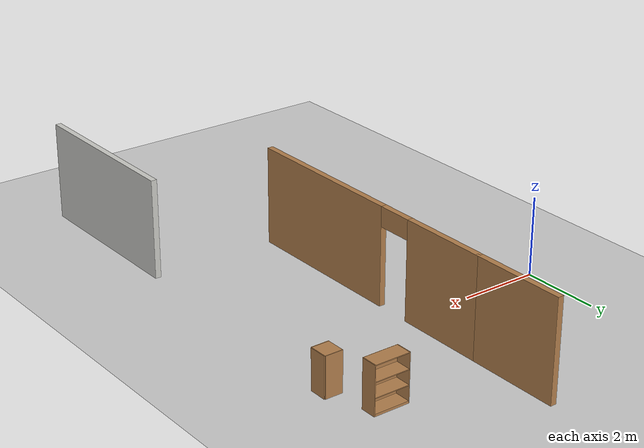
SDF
<sdf version="1.7">
 <world name="default">
  <light name="sun" type="directional">
   <pose>0 0 10 0 -0 0</pose>
   <diffuse>0.8 0.8 0.8 1</diffuse>
   <specular>0.2 0.2 0.2 1</specular>
   <attenuation>
    <range>1000</range>
    <constant>0.9</constant>
    <linear>0.01</linear>
    <quadratic>0.001</quadratic>
   </attenuation>
   <direction>-0.5 0.1 -0.9</direction>
   <spot><inner_angle>0</inner_angle><outer_angle>0</outer_angle><falloff>0</falloff></spot>
  </light>
  <model name="ground_plane">
   <static>1</static>
   <link name="link">
    <collision name="collision">
     <geometry><plane><normal>0 0 1</normal><size>100 100</size></plane></geometry>
     <surface><friction><ode><mu>100</mu><mu2>50</mu2></ode></friction></surface>
    </collision>
    <visual name="visual">
     <cast_shadows>0</cast_shadows>
     <geometry><plane><normal>0 0 1</normal><size>100 100</size></plane></geometry>
     <material>
      <script><uri>file://media/materials/scripts/gazebo.material</uri><name>Gazebo/Grey</name></script>
     </material>
    </visual>
   </link>
  </model>
  <gravity>0 0 -9.8</gravity>
  <magnetic_field>6e-06 2.3e-05 -4.2e-05</magnetic_field>
  <atmosphere type="adiabatic"/>
  <physics type="ode">
   <max_step_size>0.001</max_step_size>
   <real_time_factor>1</real_time_factor>
   <real_time_update_rate>1000</real_time_update_rate>
  </physics>
  <scene><ambient>0.4 0.4 0.4 1</ambient><background>0.7 0.7 0.7 1</background><shadows>1</shadows></scene>
  <audio><device>default</device></audio>
  <spherical_coordinates>
   <surface_model>EARTH_WGS84</surface_model>
   <latitude_deg>0</latitude_deg>
   <longitude_deg>0</longitude_deg>
   <elevation>0</elevation>
   <heading_deg>0</heading_deg>
  </spherical_coordinates>
  <model name="models_2">
   <link name="Wall_23">
    <pose>0.198577 5.89558 0 0 -0 1.5708</pose>
    <inertial>
     <inertia><ixx>0</ixx><ixy>0</ixy><ixz>0</ixz><iyy>0</iyy><iyz>0</iyz><izz>0</izz></inertia>
     <mass>0</mass>
    </inertial>
    <visual name="Wall_23_Visual">
     <pose>0 0 1.25 0 -0 0</pose>
     <geometry><box><size>2.43974 0.15 2.5</size></box></geometry>
     <material>
      <script><uri>file://media/materials/scripts/gazebo.material</uri><name>Gazebo/Wood</name></script>
      <ambient>1 1 1 1</ambient>
      <shader type="pixel"/>
     </material>
     <meta><layer>0</layer></meta>
    </visual>
    <collision name="Wall_23_Collision">
     <pose>0 0 1.25 0 -0 0</pose>
     <geometry><box><size>2.43974 0.15 2.5</size></box></geometry>
     <surface>
      <friction>
       <ode><mu>1</mu><mu2>1</mu2><fdir1>0 0 0</fdir1><slip1>0</slip1><slip2>0</slip2></ode>
       <torsional>
        <coefficient>1</coefficient>
        <patch_radius>0</patch_radius>
        <surface_radius>0</surface_radius>
        <use_patch_radius>1</use_patch_radius>
        <ode><slip>0</slip></ode>
       </torsional>
      </friction>
      <bounce><restitution_coefficient>0</restitution_coefficient><threshold>1e+06</threshold></bounce>
      <contact>
       <collide_without_contact>0</collide_without_contact>
       <collide_without_contact_bitmask>1</collide_without_contact_bitmask>
       <collide_bitmask>1</collide_bitmask>
       <ode>
        <soft_cfm>0</soft_cfm>
        <soft_erp>0.2</soft_erp>
        <kp>1e+13</kp>
        <kd>1</kd>
        <max_vel>0.01</max_vel>
        <min_depth>0</min_depth>
       </ode>
       <bullet>
        <split_impulse>1</split_impulse>
        <split_impulse_penetration_threshold>-0.01</split_impulse_penetration_threshold>
        <soft_cfm>0</soft_cfm>
        <soft_erp>0.2</soft_erp>
        <kp>1e+13</kp>
        <kd>1</kd>
       </bullet>
      </contact>
     </surface>
    </collision>
   </link>
   <link name="Wall_30">
    <pose>3.5114 -4.95073 0 0 0 -1.5708</pose>
    <inertial>
     <inertia><ixx>0</ixx><ixy>0</ixy><ixz>0</ixz><iyy>0</iyy><iyz>0</iyz><izz>0</izz></inertia>
     <mass>0</mass>
    </inertial>
    <visual name="Wall_30_Visual">
     <pose>0 0 1.25 0 -0 0</pose>
     <geometry><box><size>4.48465 0.15 2.5</size></box></geometry>
     <material>
      <script><uri>file://media/materials/scripts/gazebo.material</uri><name>Gazebo/CeilingTiled</name></script>
      <ambient>1 1 1 1</ambient>
      <shader type="pixel"/>
     </material>
     <meta><layer>0</layer></meta>
    </visual>
    <collision name="Wall_30_Collision">
     <pose>0 0 1.25 0 -0 0</pose>
     <geometry><box><size>4.48465 0.15 2.5</size></box></geometry>
     <surface>
      <friction>
       <ode><mu>1</mu><mu2>1</mu2><fdir1>0 0 0</fdir1><slip1>0</slip1><slip2>0</slip2></ode>
       <torsional>
        <coefficient>1</coefficient>
        <patch_radius>0</patch_radius>
        <surface_radius>0</surface_radius>
        <use_patch_radius>1</use_patch_radius>
        <ode><slip>0</slip></ode>
       </torsional>
      </friction>
      <bounce><restitution_coefficient>0</restitution_coefficient><threshold>1e+06</threshold></bounce>
      <contact>
       <collide_without_contact>0</collide_without_contact>
       <collide_without_contact_bitmask>1</collide_without_contact_bitmask>
       <collide_bitmask>1</collide_bitmask>
       <ode>
        <soft_cfm>0</soft_cfm>
        <soft_erp>0.2</soft_erp>
        <kp>1e+13</kp>
        <kd>1</kd>
        <max_vel>0.01</max_vel>
        <min_depth>0</min_depth>
       </ode>
       <bullet>
        <split_impulse>1</split_impulse>
        <split_impulse_penetration_threshold>-0.01</split_impulse_penetration_threshold>
        <soft_cfm>0</soft_cfm>
        <soft_erp>0.2</soft_erp>
        <kp>1e+13</kp>
        <kd>1</kd>
       </bullet>
      </contact>
     </surface>
    </collision>
   </link>
   <link name="Wall_32">
    <pose>0.198575 1.00599 0 0 0 -1.5708</pose>
    <visual name="Wall_32_Visual_2">
     <pose>-1.0251 0 2.25 0 -0 0</pose>
     <geometry><box><size>0.9 0.15 0.5</size></box></geometry>
     <material>
      <script><uri>file://media/materials/scripts/gazebo.material</uri><name>Gazebo/Wood</name></script>
      <ambient>0.996078 0.47451 0.0196078 1</ambient>
      <shader type="pixel"/>
     </material>
     <meta><layer>0</layer></meta>
    </visual>
    <visual name="Wall_32_Visual_0">
     <pose>-2.61255 0 1.25 0 -0 0</pose>
     <geometry><box><size>2.2749 0.15 2.5</size></box></geometry>
     <material>
      <script><uri>file://media/materials/scripts/gazebo.material</uri><name>Gazebo/Wood</name></script>
      <ambient>0.996078 0.47451 0.0196078 1</ambient>
      <shader type="pixel"/>
     </material>
     <meta><layer>0</layer></meta>
    </visual>
    <visual name="Wall_32_Visual_1">
     <pose>1.58745 0 1.25 0 -0 0</pose>
     <geometry><box><size>4.3251 0.15 2.5</size></box></geometry>
     <material>
      <script><uri>file://media/materials/scripts/gazebo.material</uri><name>Gazebo/Wood</name></script>
      <ambient>0.996078 0.47451 0.0196078 1</ambient>
      <shader type="pixel"/>
     </material>
     <meta><layer>0</layer></meta>
    </visual>
    <collision name="Wall_32_Collision_0">
     <pose>-2.61255 0 1.25 0 -0 0</pose>
     <geometry><box><size>2.2749 0.15 2.5</size></box></geometry>
     <surface>
      <friction>
       <ode><mu>1</mu><mu2>1</mu2><fdir1>0 0 0</fdir1><slip1>0</slip1><slip2>0</slip2></ode>
       <torsional>
        <coefficient>1</coefficient>
        <patch_radius>0</patch_radius>
        <surface_radius>0</surface_radius>
        <use_patch_radius>1</use_patch_radius>
        <ode><slip>0</slip></ode>
       </torsional>
      </friction>
      <bounce><restitution_coefficient>0</restitution_coefficient><threshold>1e+06</threshold></bounce>
      <contact>
       <collide_without_contact>0</collide_without_contact>
       <collide_without_contact_bitmask>1</collide_without_contact_bitmask>
       <collide_bitmask>1</collide_bitmask>
       <ode>
        <soft_cfm>0</soft_cfm>
        <soft_erp>0.2</soft_erp>
        <kp>1e+13</kp>
        <kd>1</kd>
        <max_vel>0.01</max_vel>
        <min_depth>0</min_depth>
       </ode>
       <bullet>
        <split_impulse>1</split_impulse>
        <split_impulse_penetration_threshold>-0.01</split_impulse_penetration_threshold>
        <soft_cfm>0</soft_cfm>
        <soft_erp>0.2</soft_erp>
        <kp>1e+13</kp>
        <kd>1</kd>
       </bullet>
      </contact>
     </surface>
    </collision>
    <collision name="Wall_32_Collision_1">
     <pose>1.58745 0 1.25 0 -0 0</pose>
     <geometry><box><size>4.3251 0.15 2.5</size></box></geometry>
     <surface>
      <friction>
       <ode><mu>1</mu><mu2>1</mu2><fdir1>0 0 0</fdir1><slip1>0</slip1><slip2>0</slip2></ode>
       <torsional>
        <coefficient>1</coefficient>
        <patch_radius>0</patch_radius>
        <surface_radius>0</surface_radius>
        <use_patch_radius>1</use_patch_radius>
        <ode><slip>0</slip></ode>
       </torsional>
      </friction>
      <bounce><restitution_coefficient>0</restitution_coefficient><threshold>1e+06</threshold></bounce>
      <contact>
       <collide_without_contact>0</collide_without_contact>
       <collide_without_contact_bitmask>1</collide_without_contact_bitmask>
       <collide_bitmask>1</collide_bitmask>
       <ode>
        <soft_cfm>0</soft_cfm>
        <soft_erp>0.2</soft_erp>
        <kp>1e+13</kp>
        <kd>1</kd>
        <max_vel>0.01</max_vel>
        <min_depth>0</min_depth>
       </ode>
       <bullet>
        <split_impulse>1</split_impulse>
        <split_impulse_penetration_threshold>-0.01</split_impulse_penetration_threshold>
        <soft_cfm>0</soft_cfm>
        <soft_erp>0.2</soft_erp>
        <kp>1e+13</kp>
        <kd>1</kd>
       </bullet>
      </contact>
     </surface>
    </collision>
    <collision name="Wall_32_Collision_2">
     <pose>-1.0251 0 2.25 0 -0 0</pose>
     <geometry><box><size>0.9 0.15 0.5</size></box></geometry>
     <surface>
      <friction>
       <ode><mu>1</mu><mu2>1</mu2><fdir1>0 0 0</fdir1><slip1>0</slip1><slip2>0</slip2></ode>
       <torsional>
        <coefficient>1</coefficient>
        <patch_radius>0</patch_radius>
        <surface_radius>0</surface_radius>
        <use_patch_radius>1</use_patch_radius>
        <ode><slip>0</slip></ode>
       </torsional>
      </friction>
      <bounce><restitution_coefficient>0</restitution_coefficient><threshold>1e+06</threshold></bounce>
      <contact>
       <collide_without_contact>0</collide_without_contact>
       <collide_without_contact_bitmask>1</collide_without_contact_bitmask>
       <collide_bitmask>1</collide_bitmask>
       <ode>
        <soft_cfm>0</soft_cfm>
        <soft_erp>0.2</soft_erp>
        <kp>1e+13</kp>
        <kd>1</kd>
        <max_vel>0.01</max_vel>
        <min_depth>0</min_depth>
       </ode>
       <bullet>
        <split_impulse>1</split_impulse>
        <split_impulse_penetration_threshold>-0.01</split_impulse_penetration_threshold>
        <soft_cfm>0</soft_cfm>
        <soft_erp>0.2</soft_erp>
        <kp>1e+13</kp>
        <kd>1</kd>
       </bullet>
      </contact>
     </surface>
    </collision>
   </link>
   <static>1</static>
   <pose>3.5864 -2.48394 0 0 -0 0</pose>
  </model>
  <model name="bookshelf">
   <static>1</static>
   <link name="link">
    <inertial><mass>1</mass></inertial>
    <collision name="back">
     <pose>0 0.005 0.6 0 -0 0</pose>
     <geometry><box><size>0.9 0.01 1.2</size></box></geometry>
    </collision>
    <visual name="visual1">
     <pose>0 0.005 0.6 0 -0 0</pose>
     <geometry><box><size>0.9 0.01 1.2</size></box></geometry>
     <material>
      <script><uri>file://media/materials/scripts/gazebo.material</uri><name>Gazebo/Wood</name></script>
     </material>
    </visual>
    <collision name="left_side">
     <pose>0.45 -0.195 0.6 0 -0 0</pose>
     <geometry><box><size>0.02 0.4 1.2</size></box></geometry>
    </collision>
    <visual name="visual2">
     <pose>0.45 -0.195 0.6 0 -0 0</pose>
     <geometry><box><size>0.02 0.4 1.2</size></box></geometry>
     <material>
      <script><uri>file://media/materials/scripts/gazebo.material</uri><name>Gazebo/Wood</name></script>
     </material>
    </visual>
    <collision name="right_side">
     <pose>-0.45 -0.195 0.6 0 -0 0</pose>
     <geometry><box><size>0.02 0.4 1.2</size></box></geometry>
    </collision>
    <visual name="visual3">
     <pose>-0.45 -0.195 0.6 0 -0 0</pose>
     <geometry><box><size>0.02 0.4 1.2</size></box></geometry>
     <material>
      <script><uri>file://media/materials/scripts/gazebo.material</uri><name>Gazebo/Wood</name></script>
     </material>
    </visual>
    <collision name="bottom">
     <pose>0 -0.195 0.03 0 -0 0</pose>
     <geometry><box><size>0.88 0.4 0.06</size></box></geometry>
    </collision>
    <visual name="visual4">
     <pose>0 -0.195 0.03 0 -0 0</pose>
     <geometry><box><size>0.88 0.4 0.06</size></box></geometry>
     <material>
      <script><uri>file://media/materials/scripts/gazebo.material</uri><name>Gazebo/Wood</name></script>
     </material>
    </visual>
    <collision name="top">
     <pose>0 -0.195 1.19 0 -0 0</pose>
     <geometry><box><size>0.88 0.4 0.02</size></box></geometry>
    </collision>
    <visual name="visual5">
     <pose>0 -0.195 1.19 0 -0 0</pose>
     <geometry><box><size>0.88 0.4 0.02</size></box></geometry>
     <material>
      <script><uri>file://media/materials/scripts/gazebo.material</uri><name>Gazebo/Wood</name></script>
     </material>
    </visual>
    <collision name="low_shelf">
     <pose>0 -0.195 0.43 0 -0 0</pose>
     <geometry><box><size>0.88 0.4 0.02</size></box></geometry>
    </collision>
    <visual name="visual6">
     <pose>0 -0.195 0.43 0 -0 0</pose>
     <geometry><box><size>0.88 0.4 0.02</size></box></geometry>
     <material>
      <script><uri>file://media/materials/scripts/gazebo.material</uri><name>Gazebo/Wood</name></script>
     </material>
    </visual>
    <collision name="high_shelf">
     <pose>0 -0.195 0.8 0 -0 0</pose>
     <geometry><box><size>0.88 0.4 0.02</size></box></geometry>
    </collision>
    <visual name="visual7">
     <pose>0 -0.195 0.8 0 -0 0</pose>
     <geometry><box><size>0.88 0.4 0.02</size></box></geometry>
     <material>
      <script><uri>file://media/materials/scripts/gazebo.material</uri><name>Gazebo/Wood</name></script>
     </material>
    </visual>
   </link>
   <pose>6.53419 2.39245 0 0 -0 3.14</pose>
  </model>
  <model name="cabinet">
   <static>1</static>
   <link name="cabinet_bottom_plate">
    <inertial>
     <pose>0 0 -1 0 -0 0</pose>
     <inertia><ixx>2.05</ixx><ixy>0</ixy><ixz>0</ixz><iyy>2.05</iyy><iyz>0</iyz><izz>2.05</izz></inertia>
     <mass>25</mass>
    </inertial>
    <collision name="cabinet_bottom_plate_geom">
     <pose>0 0 0.01 0 -0 0</pose>
     <geometry><box><size>0.45 0.45 0.02</size></box></geometry>
    </collision>
    <visual name="cabinet_bottom_plate_geom_visual">
     <pose>0 0 0.01 0 -0 0</pose>
     <geometry><box><size>0.45 0.45 0.02</size></box></geometry>
     <material>
      <script><uri>file://media/materials/scripts/gazebo.material</uri><name>Gazebo/Wood</name></script>
     </material>
    </visual>
    <collision name="cabinet_bottom_plate_geom_cabinet_back_plate">
     <pose>0.235 0 0.51 0 -0 0</pose>
     <geometry><box><size>0.02 0.45 1.02</size></box></geometry>
    </collision>
    <visual name="cabinet_bottom_plate_geom_cabinet_back_plate_visual">
     <pose>0.235 0 0.51 0 -0 0</pose>
     <geometry><box><size>0.02 0.45 1.02</size></box></geometry>
     <material>
      <script><uri>file://media/materials/scripts/gazebo.material</uri><name>Gazebo/Wood</name></script>
     </material>
    </visual>
    <collision name="cabinet_bottom_plate_geom_cabinet_left_plate">
     <pose>0 0.235 0.51 0 -0 0</pose>
     <geometry><box><size>0.45 0.02 1.02</size></box></geometry>
    </collision>
    <visual name="cabinet_bottom_plate_geom_cabinet_left_plate_visual">
     <pose>0 0.235 0.51 0 -0 0</pose>
     <geometry><box><size>0.45 0.02 1.02</size></box></geometry>
     <material>
      <script><uri>file://media/materials/scripts/gazebo.material</uri><name>Gazebo/Wood</name></script>
     </material>
    </visual>
    <collision name="cabinet_bottom_plate_geom_cabinet_middle_plate">
     <pose>0 0 0.51 0 -0 0</pose>
     <geometry><box><size>0.45 0.45 0.02</size></box></geometry>
    </collision>
    <visual name="cabinet_bottom_plate_geom_cabinet_middle_plate_visual">
     <pose>0 0 0.51 0 -0 0</pose>
     <geometry><box><size>0.45 0.45 0.02</size></box></geometry>
     <material>
      <script><uri>file://media/materials/scripts/gazebo.material</uri><name>Gazebo/Wood</name></script>
     </material>
    </visual>
    <collision name="cabinet_bottom_plate_geom_cabinet_right_plate">
     <pose>0 -0.235 0.51 0 -0 0</pose>
     <geometry><box><size>0.45 0.02 1.02</size></box></geometry>
    </collision>
    <visual name="cabinet_bottom_plate_geom_cabinet_right_plate_visual">
     <pose>0 -0.235 0.51 0 -0 0</pose>
     <geometry><box><size>0.45 0.02 1.02</size></box></geometry>
     <material>
      <script><uri>file://media/materials/scripts/gazebo.material</uri><name>Gazebo/Wood</name></script>
     </material>
    </visual>
    <collision name="cabinet_bottom_plate_geom_cabinet_top_plate">
     <pose>0 0 1.01 0 -0 0</pose>
     <geometry><box><size>0.45 0.45 0.02</size></box></geometry>
    </collision>
    <visual name="cabinet_bottom_plate_geom_cabinet_top_plate_visual">
     <pose>0 0 1.01 0 -0 0</pose>
     <geometry><box><size>0.45 0.45 0.02</size></box></geometry>
     <material>
      <script><uri>file://media/materials/scripts/gazebo.material</uri><name>Gazebo/Wood</name></script>
     </material>
    </visual>
   </link>
   <pose>7.13324 1.39914 0 0 -0 0</pose>
  </model>
 </world>
</sdf>
